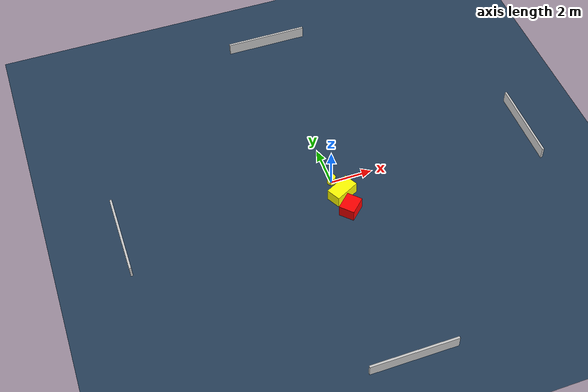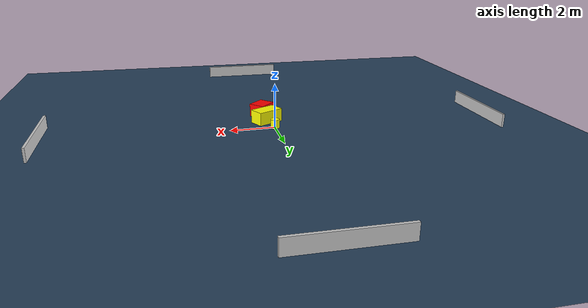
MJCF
<?xml version="1.0" ?>
<mujoco model="generated_environment">
  <option timestep="0.01" integrator="RK4" cone="elliptic"/>
  <default>
    <geom density="1"/>
  </default>
  <asset>
    <texture builtin="gradient" height="3072" name="skybox" rgb1="0.3 0.5 0.7" rgb2="0 0 0" type="skybox" width="512"/>
    <texture builtin="checker" height="300" name="groundplane" rgb1="0.2 0.3 0.4" rgb2="0.1 0.2 0.3" type="2d" width="300"/>
    <material name="groundplane" reflectance="0.2" texrepeat="5 5" texture="groundplane"/>
  </asset>
  <worldbody>
    <light dir="0 0 -1" directional="true" pos="0 0 1.5"/>
    <geom condim="3" friction="0.5 0.005 0.001" material="groundplane" name="floor" pos="0 0 0" size="0 0 0.05" type="plane"/>
    <body name="walls">
      <geom name="wall_1" condim="4" pos="-10.0 0.0 0.3" rgba="0.800000011920929 0.800000011920929 0.800000011920929 1.0" size="0.05 2.0 0.3" type="box"/>
      <geom name="wall_2" condim="4" pos="10.0 0.0 0.3" rgba="0.800000011920929 0.800000011920929 0.800000011920929 1.0" size="0.05 2.0 0.3" type="box"/>
      <geom name="wall_3" condim="4" pos="0.0 -10.0 0.3" rgba="0.800000011920929 0.800000011920929 0.800000011920929 1.0" size="2.0 0.05 0.3" type="box"/>
      <geom name="wall_4" condim="4" pos="0.0 10.0 0.3" rgba="0.800000011920929 0.800000011920929 0.800000011920929 1.0" size="2.0 0.05 0.3" type="box"/>
    </body>
    <body name="robot">
      <joint name="joint_x" type="slide" pos="0 0 0" axis="1 0 0"/>
      <joint name="joint_y" type="slide" pos="0 0 0" axis="0 1 0"/>
      <geom name="robot" type="cylinder" pos="0.0 0.0 0.2" size="0.2 0.2 0.0" mass="5.0" friction="1.0 0.005 0.0001" condim="4" rgba="1.0 1.0 0.0 1.0"/>
    </body>
    <body name="obstacle_1_movable">
      <geom name="obstacle_1_movable" condim="4" pos="0.20404104549563834 -0.9074095527693098 0.3" euler="0 0 297.5257708934902" friction="0.0 0.005 0.001" rgba="1.0 1.0 0.0 1.0" size="0.34923889853919515 0.6156438076987238 0.3" type="box" mass="0.1"/>
      <joint type="free"/>
    </body>
    <body name="obstacle_2_static">
      <geom name="obstacle_2_static" condim="4" pos="0.2505177122110574 -1.8963665894860349 0.3" euler="0 0 44.00593167552417" friction="0.0 0.005 0.001" rgba="1.0 0.0 0.0 1.0" size="0.4466527660034405 0.37123134272468117 0.3" type="box"/>
    </body>
  </worldbody>
  <actuator>
    <motor name="actuator_x" joint="joint_x" gear="1" ctrlrange="-1 1"/>
    <motor name="actuator_y" joint="joint_y" gear="1" ctrlrange="-1 1"/>
  </actuator>
</mujoco>
